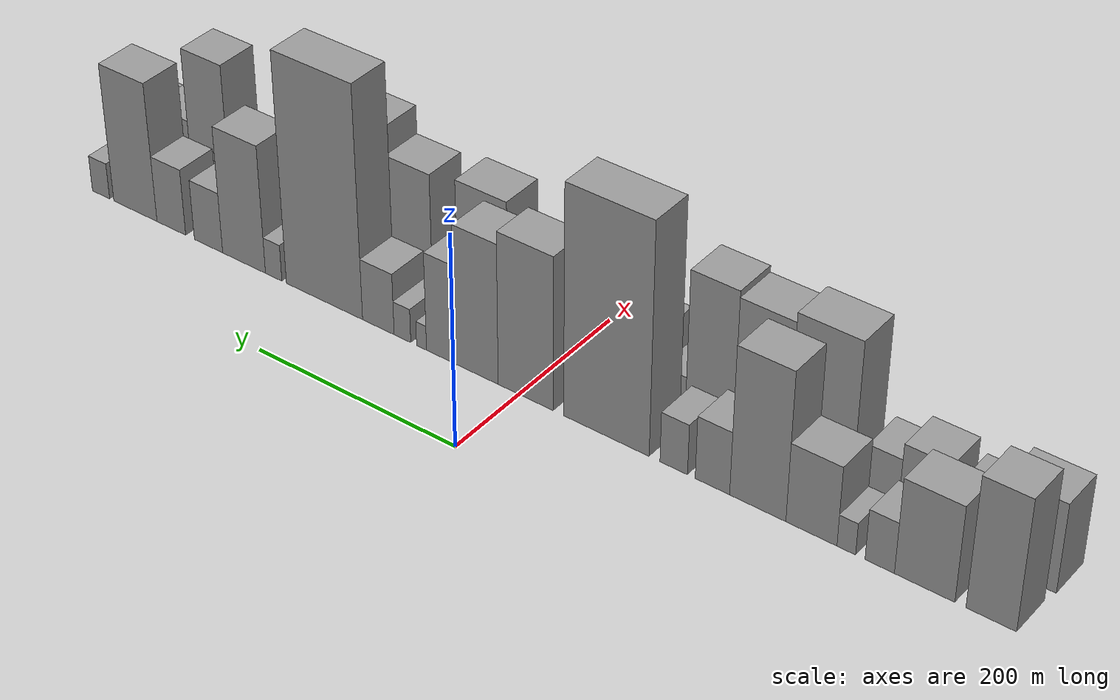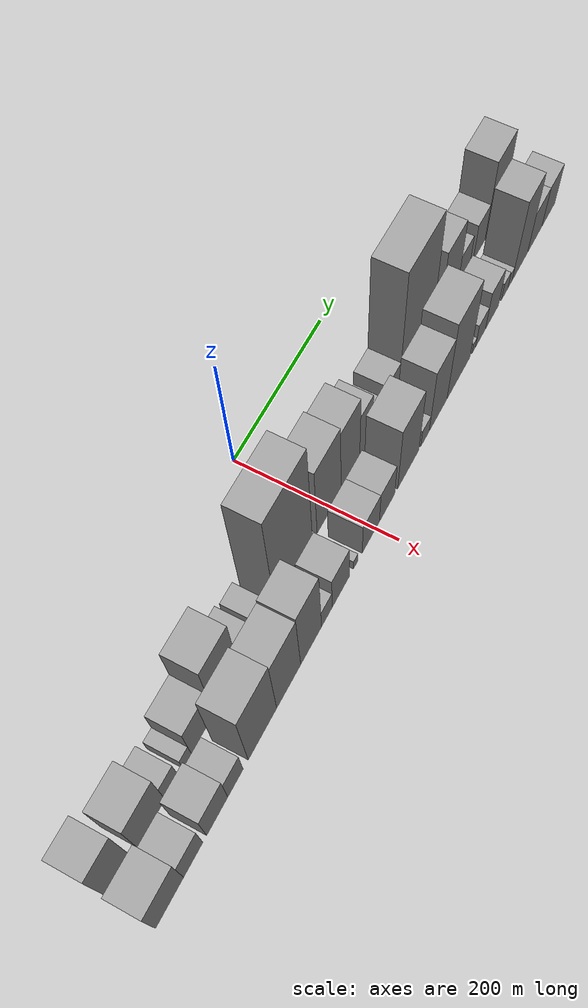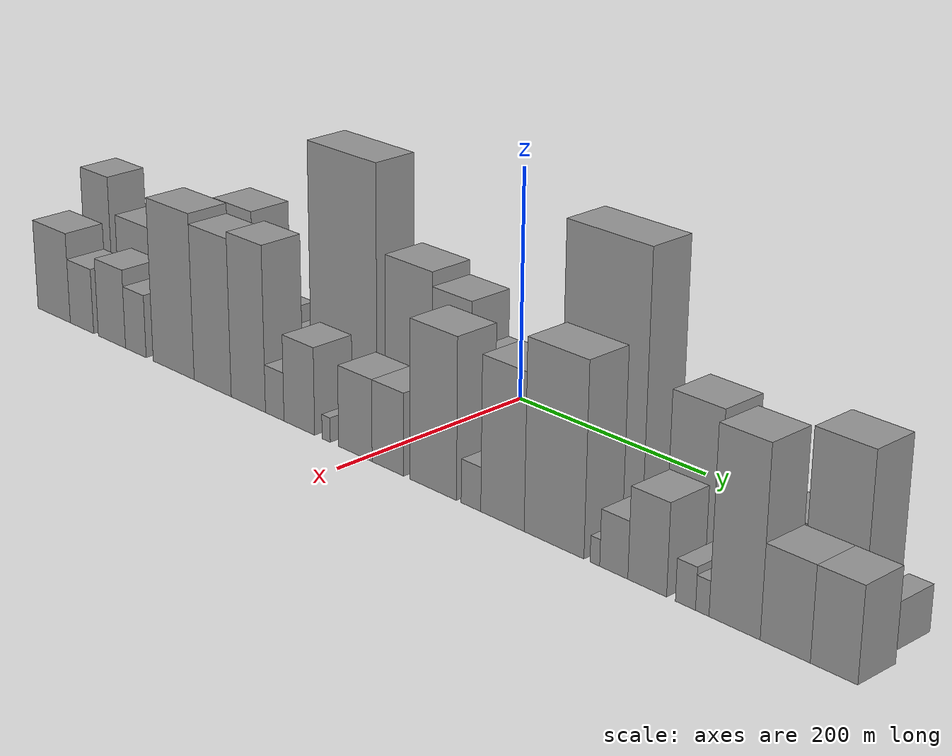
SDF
<sdf version="1.6">
 <world name="default">
  <scene>
   <sky><clouds><speed>12</speed></clouds></sky>
   <ambient>0.4 0.4 0.4 1</ambient>
   <background>0.7 0.7 0.7 1</background>
   <shadows>1</shadows>
  </scene>
  <gravity>0 0 -9.8066</gravity>
  <magnetic_field>6e-06 2.3e-05 -4.2e-05</magnetic_field>
  <physics default="0" name="default_physics" type="ode">
   <ode>
    <solver>
     <type>quick</type>
     <iters>10</iters>
     <sor>1.0</sor>
     <use_dynamic_moi_rescaling>0</use_dynamic_moi_rescaling>
    </solver>
    <constraints>
     <cfm>0</cfm>
     <erp>0.2</erp>
     <contact_max_correcting_vel>100</contact_max_correcting_vel>
     <contact_surface_layer>0.001</contact_surface_layer>
    </constraints>
   </ode>
   <max_step_size>0.004</max_step_size>
   <real_time_factor>1</real_time_factor>
   <real_time_update_rate>250</real_time_update_rate>
  </physics>
  <light name="sun" type="directional">
   <pose>0 0 10 0 0 0</pose>
   <diffuse>0.8 0.8 0.8 1</diffuse>
   <specular>0.2 0.2 0.2 1</specular>
   <attenuation>
    <range>1000</range>
    <constant>0.9</constant>
    <linear>0.01</linear>
    <quadratic>0.001</quadratic>
   </attenuation>
   <direction>-0.5 0.1 -0.9</direction>
  </light>
  <model name="building_1">
   <static>1</static>
   <pose>100.0000 -420.4994 0 0.000000 0.000000 0.000000</pose>
   <link name="link">
    <pose>0 0 61.50 0 0 0</pose>
    <collision name="collision"><geometry><box><size>40.0000 41.0012 123.0000</size></box></geometry></collision>
    <visual name="visual">
     <cast_shadows>0</cast_shadows>
     <geometry><box><size>40.0000 41.0012 123.0000</size></box></geometry>
     <material>
      <script>
       <uri>model://grey_wall/materials/scripts</uri>
       <uri>model://grey_wall/materials/textures</uri>
       <name>vrc/grey_wall</name>
      </script>
     </material>
    </visual>
   </link>
  </model>
  <model name="building_2">
   <static>1</static>
   <pose>100.0000 -365.9162 0 0.000000 0.000000 0.000000</pose>
   <link name="link">
    <pose>0 0 45.00 0 0 0</pose>
    <collision name="collision"><geometry><box><size>40.0000 50.1651 90.0000</size></box></geometry></collision>
    <visual name="visual">
     <cast_shadows>0</cast_shadows>
     <geometry><box><size>40.0000 50.1651 90.0000</size></box></geometry>
     <material>
      <script>
       <uri>model://grey_wall/materials/scripts</uri>
       <uri>model://grey_wall/materials/textures</uri>
       <name>vrc/grey_wall</name>
      </script>
     </material>
    </visual>
   </link>
  </model>
  <model name="building_3">
   <static>1</static>
   <pose>100.0000 -328.4179 0 0.000000 0.000000 0.000000</pose>
   <link name="link">
    <pose>0 0 24.00 0 0 0</pose>
    <collision name="collision"><geometry><box><size>40.0000 24.8317 48.0000</size></box></geometry></collision>
    <visual name="visual">
     <cast_shadows>0</cast_shadows>
     <geometry><box><size>40.0000 24.8317 48.0000</size></box></geometry>
     <material>
      <script>
       <uri>model://grey_wall/materials/scripts</uri>
       <uri>model://grey_wall/materials/textures</uri>
       <name>vrc/grey_wall</name>
      </script>
     </material>
    </visual>
   </link>
  </model>
  <model name="building_4">
   <static>1</static>
   <pose>100.0000 -300.0164 0 0.000000 0.000000 0.000000</pose>
   <link name="link">
    <pose>0 0 15.00 0 0 0</pose>
    <collision name="collision"><geometry><box><size>40.0000 15.9713 30.0000</size></box></geometry></collision>
    <visual name="visual">
     <cast_shadows>0</cast_shadows>
     <geometry><box><size>40.0000 15.9713 30.0000</size></box></geometry>
     <material>
      <script>
       <uri>model://grey_wall/materials/scripts</uri>
       <uri>model://grey_wall/materials/textures</uri>
       <name>vrc/grey_wall</name>
      </script>
     </material>
    </visual>
   </link>
  </model>
  <model name="building_5">
   <static>1</static>
   <pose>100.0000 -269.8307 0 0.000000 0.000000 0.000000</pose>
   <link name="link">
    <pose>0 0 37.50 0 0 0</pose>
    <collision name="collision"><geometry><box><size>40.0000 44.3999 75.0000</size></box></geometry></collision>
    <visual name="visual">
     <cast_shadows>0</cast_shadows>
     <geometry><box><size>40.0000 44.3999 75.0000</size></box></geometry>
     <material>
      <script>
       <uri>model://grey_wall/materials/scripts</uri>
       <uri>model://grey_wall/materials/textures</uri>
       <name>vrc/grey_wall</name>
      </script>
     </material>
    </visual>
   </link>
  </model>
  <model name="building_6">
   <static>1</static>
   <pose>100.0000 -222.6311 0 0.000000 0.000000 0.000000</pose>
   <link name="link">
    <pose>0 0 70.50 0 0 0</pose>
    <collision name="collision"><geometry><box><size>40.0000 49.9993 141.0000</size></box></geometry></collision>
    <visual name="visual">
     <cast_shadows>0</cast_shadows>
     <geometry><box><size>40.0000 49.9993 141.0000</size></box></geometry>
     <material>
      <script>
       <uri>model://grey_wall/materials/scripts</uri>
       <uri>model://grey_wall/materials/textures</uri>
       <name>vrc/grey_wall</name>
      </script>
     </material>
    </visual>
   </link>
  </model>
  <model name="building_7">
   <static>1</static>
   <pose>100.0000 -182.0371 0 0.000000 0.000000 0.000000</pose>
   <link name="link">
    <pose>0 0 30.00 0 0 0</pose>
    <collision name="collision"><geometry><box><size>40.0000 31.1887 60.0000</size></box></geometry></collision>
    <visual name="visual">
     <cast_shadows>0</cast_shadows>
     <geometry><box><size>40.0000 31.1887 60.0000</size></box></geometry>
     <material>
      <script>
       <uri>model://grey_wall/materials/scripts</uri>
       <uri>model://grey_wall/materials/textures</uri>
       <name>vrc/grey_wall</name>
      </script>
     </material>
    </visual>
   </link>
  </model>
  <model name="building_8">
   <static>1</static>
   <pose>100.0000 -146.7511 0 0.000000 0.000000 0.000000</pose>
   <link name="link">
    <pose>0 0 24.00 0 0 0</pose>
    <collision name="collision"><geometry><box><size>40.0000 25.3833 48.0000</size></box></geometry></collision>
    <visual name="visual">
     <cast_shadows>0</cast_shadows>
     <geometry><box><size>40.0000 25.3833 48.0000</size></box></geometry>
     <material>
      <script>
       <uri>model://grey_wall/materials/scripts</uri>
       <uri>model://grey_wall/materials/textures</uri>
       <name>vrc/grey_wall</name>
      </script>
     </material>
    </visual>
   </link>
  </model>
  <model name="building_9">
   <static>1</static>
   <pose>100.0000 -83.4653 0 0.000000 0.000000 0.000000</pose>
   <link name="link">
    <pose>0 0 109.50 0 0 0</pose>
    <collision name="collision"><geometry><box><size>40.0000 81.1882 219.0000</size></box></geometry></collision>
    <visual name="visual">
     <cast_shadows>0</cast_shadows>
     <geometry><box><size>40.0000 81.1882 219.0000</size></box></geometry>
     <material>
      <script>
       <uri>model://grey_wall/materials/scripts</uri>
       <uri>model://grey_wall/materials/textures</uri>
       <name>vrc/grey_wall</name>
      </script>
     </material>
    </visual>
   </link>
  </model>
  <model name="building_10">
   <static>1</static>
   <pose>100.0000 -5.8276 0 0.000000 0.000000 0.000000</pose>
   <link name="link">
    <pose>0 0 73.50 0 0 0</pose>
    <collision name="collision"><geometry><box><size>40.0000 54.0872 147.0000</size></box></geometry></collision>
    <visual name="visual">
     <cast_shadows>0</cast_shadows>
     <geometry><box><size>40.0000 54.0872 147.0000</size></box></geometry>
     <material>
      <script>
       <uri>model://grey_wall/materials/scripts</uri>
       <uri>model://grey_wall/materials/textures</uri>
       <name>vrc/grey_wall</name>
      </script>
     </material>
    </visual>
   </link>
  </model>
  <model name="building_11">
   <static>1</static>
   <pose>100.0000 42.9381 0 0.000000 0.000000 0.000000</pose>
   <link name="link">
    <pose>0 0 67.50 0 0 0</pose>
    <collision name="collision"><geometry><box><size>40.0000 43.4441 135.0000</size></box></geometry></collision>
    <visual name="visual">
     <cast_shadows>0</cast_shadows>
     <geometry><box><size>40.0000 43.4441 135.0000</size></box></geometry>
     <material>
      <script>
       <uri>model://grey_wall/materials/scripts</uri>
       <uri>model://grey_wall/materials/textures</uri>
       <name>vrc/grey_wall</name>
      </script>
     </material>
    </visual>
   </link>
  </model>
  <model name="building_12">
   <static>1</static>
   <pose>100.0000 79.1691 0 0.000000 0.000000 0.000000</pose>
   <link name="link">
    <pose>0 0 48.00 0 0 0</pose>
    <collision name="collision"><geometry><box><size>40.0000 29.0181 96.0000</size></box></geometry></collision>
    <visual name="visual">
     <cast_shadows>0</cast_shadows>
     <geometry><box><size>40.0000 29.0181 96.0000</size></box></geometry>
     <material>
      <script>
       <uri>model://grey_wall/materials/scripts</uri>
       <uri>model://grey_wall/materials/textures</uri>
       <name>vrc/grey_wall</name>
      </script>
     </material>
    </visual>
   </link>
  </model>
  <model name="building_13">
   <static>1</static>
   <pose>100.0000 98.7861 0 0.000000 0.000000 0.000000</pose>
   <link name="link">
    <pose>0 0 12.00 0 0 0</pose>
    <collision name="collision"><geometry><box><size>40.0000 10.2159 24.0000</size></box></geometry></collision>
    <visual name="visual">
     <cast_shadows>0</cast_shadows>
     <geometry><box><size>40.0000 10.2159 24.0000</size></box></geometry>
     <material>
      <script>
       <uri>model://grey_wall/materials/scripts</uri>
       <uri>model://grey_wall/materials/textures</uri>
       <name>vrc/grey_wall</name>
      </script>
     </material>
    </visual>
   </link>
  </model>
  <model name="building_14">
   <static>1</static>
   <pose>100.0000 118.5162 0 0.000000 0.000000 0.000000</pose>
   <link name="link">
    <pose>0 0 16.50 0 0 0</pose>
    <collision name="collision"><geometry><box><size>40.0000 17.2442 33.0000</size></box></geometry></collision>
    <visual name="visual">
     <cast_shadows>0</cast_shadows>
     <geometry><box><size>40.0000 17.2442 33.0000</size></box></geometry>
     <material>
      <script>
       <uri>model://grey_wall/materials/scripts</uri>
       <uri>model://grey_wall/materials/textures</uri>
       <name>vrc/grey_wall</name>
      </script>
     </material>
    </visual>
   </link>
  </model>
  <model name="building_15">
   <static>1</static>
   <pose>100.0000 143.7085 0 0.000000 0.000000 0.000000</pose>
   <link name="link">
    <pose>0 0 30.00 0 0 0</pose>
    <collision name="collision"><geometry><box><size>40.0000 33.1403 60.0000</size></box></geometry></collision>
    <visual name="visual">
     <cast_shadows>0</cast_shadows>
     <geometry><box><size>40.0000 33.1403 60.0000</size></box></geometry>
     <material>
      <script>
       <uri>model://grey_wall/materials/scripts</uri>
       <uri>model://grey_wall/materials/textures</uri>
       <name>vrc/grey_wall</name>
      </script>
     </material>
    </visual>
   </link>
  </model>
  <model name="building_16">
   <static>1</static>
   <pose>100.0000 201.2774 0 0.000000 0.000000 0.000000</pose>
   <link name="link">
    <pose>0 0 112.50 0 0 0</pose>
    <collision name="collision"><geometry><box><size>40.0000 81.9976 225.0000</size></box></geometry></collision>
    <visual name="visual">
     <cast_shadows>0</cast_shadows>
     <geometry><box><size>40.0000 81.9976 225.0000</size></box></geometry>
     <material>
      <script>
       <uri>model://grey_wall/materials/scripts</uri>
       <uri>model://grey_wall/materials/textures</uri>
       <name>vrc/grey_wall</name>
      </script>
     </material>
    </visual>
   </link>
  </model>
  <model name="building_17">
   <static>1</static>
   <pose>100.0000 256.3181 0 0.000000 0.000000 0.000000</pose>
   <link name="link">
    <pose>0 0 18.00 0 0 0</pose>
    <collision name="collision"><geometry><box><size>40.0000 18.0838 36.0000</size></box></geometry></collision>
    <visual name="visual">
     <cast_shadows>0</cast_shadows>
     <geometry><box><size>40.0000 18.0838 36.0000</size></box></geometry>
     <material>
      <script>
       <uri>model://grey_wall/materials/scripts</uri>
       <uri>model://grey_wall/materials/textures</uri>
       <name>vrc/grey_wall</name>
      </script>
     </material>
    </visual>
   </link>
  </model>
  <model name="building_18">
   <static>1</static>
   <pose>100.0000 289.2772 0 0.000000 0.000000 0.000000</pose>
   <link name="link">
    <pose>0 0 63.00 0 0 0</pose>
    <collision name="collision"><geometry><box><size>40.0000 47.8344 126.0000</size></box></geometry></collision>
    <visual name="visual">
     <cast_shadows>0</cast_shadows>
     <geometry><box><size>40.0000 47.8344 126.0000</size></box></geometry>
     <material>
      <script>
       <uri>model://grey_wall/materials/scripts</uri>
       <uri>model://grey_wall/materials/textures</uri>
       <name>vrc/grey_wall</name>
      </script>
     </material>
    </visual>
   </link>
  </model>
  <model name="building_19">
   <static>1</static>
   <pose>100.0000 329.2720 0 0.000000 0.000000 0.000000</pose>
   <link name="link">
    <pose>0 0 30.00 0 0 0</pose>
    <collision name="collision"><geometry><box><size>40.0000 32.1552 60.0000</size></box></geometry></collision>
    <visual name="visual">
     <cast_shadows>0</cast_shadows>
     <geometry><box><size>40.0000 32.1552 60.0000</size></box></geometry>
     <material>
      <script>
       <uri>model://grey_wall/materials/scripts</uri>
       <uri>model://grey_wall/materials/textures</uri>
       <name>vrc/grey_wall</name>
      </script>
     </material>
    </visual>
   </link>
  </model>
  <model name="building_20">
   <static>1</static>
   <pose>100.0000 371.9469 0 0.000000 0.000000 0.000000</pose>
   <link name="link">
    <pose>0 0 33.00 0 0 0</pose>
    <collision name="collision"><geometry><box><size>40.0000 33.1946 66.0000</size></box></geometry></collision>
    <visual name="visual">
     <cast_shadows>0</cast_shadows>
     <geometry><box><size>40.0000 33.1946 66.0000</size></box></geometry>
     <material>
      <script>
       <uri>model://grey_wall/materials/scripts</uri>
       <uri>model://grey_wall/materials/textures</uri>
       <name>vrc/grey_wall</name>
      </script>
     </material>
    </visual>
   </link>
  </model>
  <model name="building_21">
   <static>1</static>
   <pose>100.0000 413.9653 0 0.000000 0.000000 0.000000</pose>
   <link name="link">
    <pose>0 0 69.00 0 0 0</pose>
    <collision name="collision"><geometry><box><size>40.0000 50.8423 138.0000</size></box></geometry></collision>
    <visual name="visual">
     <cast_shadows>0</cast_shadows>
     <geometry><box><size>40.0000 50.8423 138.0000</size></box></geometry>
     <material>
      <script>
       <uri>model://grey_wall/materials/scripts</uri>
       <uri>model://grey_wall/materials/textures</uri>
       <name>vrc/grey_wall</name>
      </script>
     </material>
    </visual>
   </link>
  </model>
  <model name="building_22">
   <static>1</static>
   <pose>100.0000 454.6473 0 0.000000 0.000000 0.000000</pose>
   <link name="link">
    <pose>0 0 18.00 0 0 0</pose>
    <collision name="collision"><geometry><box><size>40.0000 20.5216 36.0000</size></box></geometry></collision>
    <visual name="visual">
     <cast_shadows>0</cast_shadows>
     <geometry><box><size>40.0000 20.5216 36.0000</size></box></geometry>
     <material>
      <script>
       <uri>model://grey_wall/materials/scripts</uri>
       <uri>model://grey_wall/materials/textures</uri>
       <name>vrc/grey_wall</name>
      </script>
     </material>
    </visual>
   </link>
  </model>
  <model name="building_23">
   <static>1</static>
   <pose>152.0000 -418.9598 0 0.000000 0.000000 0.000000</pose>
   <link name="link">
    <pose>0 0 42.00 0 0 0</pose>
    <collision name="collision"><geometry><box><size>40.0000 50.0803 84.0000</size></box></geometry></collision>
    <visual name="visual">
     <cast_shadows>0</cast_shadows>
     <geometry><box><size>40.0000 50.0803 84.0000</size></box></geometry>
     <material>
      <script>
       <uri>model://grey_wall/materials/scripts</uri>
       <uri>model://grey_wall/materials/textures</uri>
       <name>vrc/grey_wall</name>
      </script>
     </material>
    </visual>
   </link>
  </model>
  <model name="building_24">
   <static>1</static>
   <pose>152.0000 -376.2382 0 0.000000 0.000000 0.000000</pose>
   <link name="link">
    <pose>0 0 30.00 0 0 0</pose>
    <collision name="collision"><geometry><box><size>40.0000 35.3631 60.0000</size></box></geometry></collision>
    <visual name="visual">
     <cast_shadows>0</cast_shadows>
     <geometry><box><size>40.0000 35.3631 60.0000</size></box></geometry>
     <material>
      <script>
       <uri>model://grey_wall/materials/scripts</uri>
       <uri>model://grey_wall/materials/textures</uri>
       <name>vrc/grey_wall</name>
      </script>
     </material>
    </visual>
   </link>
  </model>
  <model name="building_25">
   <static>1</static>
   <pose>152.0000 -331.5322 0 0.000000 0.000000 0.000000</pose>
   <link name="link">
    <pose>0 0 36.00 0 0 0</pose>
    <collision name="collision"><geometry><box><size>40.0000 40.0489 72.0000</size></box></geometry></collision>
    <visual name="visual">
     <cast_shadows>0</cast_shadows>
     <geometry><box><size>40.0000 40.0489 72.0000</size></box></geometry>
     <material>
      <script>
       <uri>model://grey_wall/materials/scripts</uri>
       <uri>model://grey_wall/materials/textures</uri>
       <name>vrc/grey_wall</name>
      </script>
     </material>
    </visual>
   </link>
  </model>
  <model name="building_26">
   <static>1</static>
   <pose>152.0000 -296.7047 0 0.000000 0.000000 0.000000</pose>
   <link name="link">
    <pose>0 0 28.50 0 0 0</pose>
    <collision name="collision"><geometry><box><size>40.0000 29.6060 57.0000</size></box></geometry></collision>
    <visual name="visual">
     <cast_shadows>0</cast_shadows>
     <geometry><box><size>40.0000 29.6060 57.0000</size></box></geometry>
     <material>
      <script>
       <uri>model://grey_wall/materials/scripts</uri>
       <uri>model://grey_wall/materials/textures</uri>
       <name>vrc/grey_wall</name>
      </script>
     </material>
    </visual>
   </link>
  </model>
  <model name="building_27">
   <static>1</static>
   <pose>152.0000 -243.4515 0 0.000000 0.000000 0.000000</pose>
   <link name="link">
    <pose>0 0 73.50 0 0 0</pose>
    <collision name="collision"><geometry><box><size>40.0000 56.9002 147.0000</size></box></geometry></collision>
    <visual name="visual">
     <cast_shadows>0</cast_shadows>
     <geometry><box><size>40.0000 56.9002 147.0000</size></box></geometry>
     <material>
      <script>
       <uri>model://grey_wall/materials/scripts</uri>
       <uri>model://grey_wall/materials/textures</uri>
       <name>vrc/grey_wall</name>
      </script>
     </material>
    </visual>
   </link>
  </model>
  <model name="building_28">
   <static>1</static>
   <pose>152.0000 -190.1696 0 0.000000 0.000000 0.000000</pose>
   <link name="link">
    <pose>0 0 69.00 0 0 0</pose>
    <collision name="collision"><geometry><box><size>40.0000 49.6636 138.0000</size></box></geometry></collision>
    <visual name="visual">
     <cast_shadows>0</cast_shadows>
     <geometry><box><size>40.0000 49.6636 138.0000</size></box></geometry>
     <material>
      <script>
       <uri>model://grey_wall/materials/scripts</uri>
       <uri>model://grey_wall/materials/textures</uri>
       <name>vrc/grey_wall</name>
      </script>
     </material>
    </visual>
   </link>
  </model>
  <model name="building_29">
   <static>1</static>
   <pose>152.0000 -143.1743 0 0.000000 0.000000 0.000000</pose>
   <link name="link">
    <pose>0 0 72.00 0 0 0</pose>
    <collision name="collision"><geometry><box><size>40.0000 44.3269 144.0000</size></box></geometry></collision>
    <visual name="visual">
     <cast_shadows>0</cast_shadows>
     <geometry><box><size>40.0000 44.3269 144.0000</size></box></geometry>
     <material>
      <script>
       <uri>model://grey_wall/materials/scripts</uri>
       <uri>model://grey_wall/materials/textures</uri>
       <name>vrc/grey_wall</name>
      </script>
     </material>
    </visual>
   </link>
  </model>
  <model name="building_30">
   <static>1</static>
   <pose>152.0000 -109.3062 0 0.000000 0.000000 0.000000</pose>
   <link name="link">
    <pose>0 0 21.00 0 0 0</pose>
    <collision name="collision"><geometry><box><size>40.0000 23.4093 42.0000</size></box></geometry></collision>
    <visual name="visual">
     <cast_shadows>0</cast_shadows>
     <geometry><box><size>40.0000 23.4093 42.0000</size></box></geometry>
     <material>
      <script>
       <uri>model://grey_wall/materials/scripts</uri>
       <uri>model://grey_wall/materials/textures</uri>
       <name>vrc/grey_wall</name>
      </script>
     </material>
    </visual>
   </link>
  </model>
  <model name="building_31">
   <static>1</static>
   <pose>152.0000 -78.6214 0 0.000000 0.000000 0.000000</pose>
   <link name="link">
    <pose>0 0 37.50 0 0 0</pose>
    <collision name="collision"><geometry><box><size>40.0000 37.9603 75.0000</size></box></geometry></collision>
    <visual name="visual">
     <cast_shadows>0</cast_shadows>
     <geometry><box><size>40.0000 37.9603 75.0000</size></box></geometry>
     <material>
      <script>
       <uri>model://grey_wall/materials/scripts</uri>
       <uri>model://grey_wall/materials/textures</uri>
       <name>vrc/grey_wall</name>
      </script>
     </material>
    </visual>
   </link>
  </model>
  <model name="building_32">
   <static>1</static>
   <pose>152.0000 -45.6721 0 0.000000 0.000000 0.000000</pose>
   <link name="link">
    <pose>0 0 10.50 0 0 0</pose>
    <collision name="collision"><geometry><box><size>40.0000 9.9383 21.0000</size></box></geometry></collision>
    <visual name="visual">
     <cast_shadows>0</cast_shadows>
     <geometry><box><size>40.0000 9.9383 21.0000</size></box></geometry>
     <material>
      <script>
       <uri>model://grey_wall/materials/scripts</uri>
       <uri>model://grey_wall/materials/textures</uri>
       <name>vrc/grey_wall</name>
      </script>
     </material>
    </visual>
   </link>
  </model>
  <model name="building_33">
   <static>1</static>
   <pose>152.0000 -10.9851 0 0.000000 0.000000 0.000000</pose>
   <link name="link">
    <pose>0 0 34.50 0 0 0</pose>
    <collision name="collision"><geometry><box><size>40.0000 39.4358 69.0000</size></box></geometry></collision>
    <visual name="visual">
     <cast_shadows>0</cast_shadows>
     <geometry><box><size>40.0000 39.4358 69.0000</size></box></geometry>
     <material>
      <script>
       <uri>model://grey_wall/materials/scripts</uri>
       <uri>model://grey_wall/materials/textures</uri>
       <name>vrc/grey_wall</name>
      </script>
     </material>
    </visual>
   </link>
  </model>
  <model name="building_34">
   <static>1</static>
   <pose>152.0000 26.8753 0 0.000000 0.000000 0.000000</pose>
   <link name="link">
    <pose>0 0 34.50 0 0 0</pose>
    <collision name="collision"><geometry><box><size>40.0000 36.2849 69.0000</size></box></geometry></collision>
    <visual name="visual">
     <cast_shadows>0</cast_shadows>
     <geometry><box><size>40.0000 36.2849 69.0000</size></box></geometry>
     <material>
      <script>
       <uri>model://grey_wall/materials/scripts</uri>
       <uri>model://grey_wall/materials/textures</uri>
       <name>vrc/grey_wall</name>
      </script>
     </material>
    </visual>
   </link>
  </model>
  <model name="building_35">
   <static>1</static>
   <pose>152.0000 77.6293 0 0.000000 0.000000 0.000000</pose>
   <link name="link">
    <pose>0 0 66.00 0 0 0</pose>
    <collision name="collision"><geometry><box><size>40.0000 51.2232 132.0000</size></box></geometry></collision>
    <visual name="visual">
     <cast_shadows>0</cast_shadows>
     <geometry><box><size>40.0000 51.2232 132.0000</size></box></geometry>
     <material>
      <script>
       <uri>model://grey_wall/materials/scripts</uri>
       <uri>model://grey_wall/materials/textures</uri>
       <name>vrc/grey_wall</name>
      </script>
     </material>
    </visual>
   </link>
  </model>
  <model name="building_36">
   <static>1</static>
   <pose>152.0000 118.7397 0 0.000000 0.000000 0.000000</pose>
   <link name="link">
    <pose>0 0 18.00 0 0 0</pose>
    <collision name="collision"><geometry><box><size>40.0000 20.9976 36.0000</size></box></geometry></collision>
    <visual name="visual">
     <cast_shadows>0</cast_shadows>
     <geometry><box><size>40.0000 20.9976 36.0000</size></box></geometry>
     <material>
      <script>
       <uri>model://grey_wall/materials/scripts</uri>
       <uri>model://grey_wall/materials/textures</uri>
       <name>vrc/grey_wall</name>
      </script>
     </material>
    </visual>
   </link>
  </model>
  <model name="building_37">
   <static>1</static>
   <pose>152.0000 151.8270 0 0.000000 0.000000 0.000000</pose>
   <link name="link">
    <pose>0 0 63.00 0 0 0</pose>
    <collision name="collision"><geometry><box><size>40.0000 45.1769 126.0000</size></box></geometry></collision>
    <visual name="visual">
     <cast_shadows>0</cast_shadows>
     <geometry><box><size>40.0000 45.1769 126.0000</size></box></geometry>
     <material>
      <script>
       <uri>model://grey_wall/materials/scripts</uri>
       <uri>model://grey_wall/materials/textures</uri>
       <name>vrc/grey_wall</name>
      </script>
     </material>
    </visual>
   </link>
  </model>
  <model name="building_38">
   <static>1</static>
   <pose>152.0000 204.2733 0 0.000000 0.000000 0.000000</pose>
   <link name="link">
    <pose>0 0 76.50 0 0 0</pose>
    <collision name="collision"><geometry><box><size>40.0000 59.7157 153.0000</size></box></geometry></collision>
    <visual name="visual">
     <cast_shadows>0</cast_shadows>
     <geometry><box><size>40.0000 59.7157 153.0000</size></box></geometry>
     <material>
      <script>
       <uri>model://grey_wall/materials/scripts</uri>
       <uri>model://grey_wall/materials/textures</uri>
       <name>vrc/grey_wall</name>
      </script>
     </material>
    </visual>
   </link>
  </model>
  <model name="building_39">
   <static>1</static>
   <pose>152.0000 244.7584 0 0.000000 0.000000 0.000000</pose>
   <link name="link">
    <pose>0 0 10.50 0 0 0</pose>
    <collision name="collision"><geometry><box><size>40.0000 9.2546 21.0000</size></box></geometry></collision>
    <visual name="visual">
     <cast_shadows>0</cast_shadows>
     <geometry><box><size>40.0000 9.2546 21.0000</size></box></geometry>
     <material>
      <script>
       <uri>model://grey_wall/materials/scripts</uri>
       <uri>model://grey_wall/materials/textures</uri>
       <name>vrc/grey_wall</name>
      </script>
     </material>
    </visual>
   </link>
  </model>
  <model name="building_40">
   <static>1</static>
   <pose>152.0000 262.8063 0 0.000000 0.000000 0.000000</pose>
   <link name="link">
    <pose>0 0 22.50 0 0 0</pose>
    <collision name="collision"><geometry><box><size>40.0000 26.8412 45.0000</size></box></geometry></collision>
    <visual name="visual">
     <cast_shadows>0</cast_shadows>
     <geometry><box><size>40.0000 26.8412 45.0000</size></box></geometry>
     <material>
      <script>
       <uri>model://grey_wall/materials/scripts</uri>
       <uri>model://grey_wall/materials/textures</uri>
       <name>vrc/grey_wall</name>
      </script>
     </material>
    </visual>
   </link>
  </model>
  <model name="building_41">
   <static>1</static>
   <pose>152.0000 294.2332 0 0.000000 0.000000 0.000000</pose>
   <link name="link">
    <pose>0 0 36.00 0 0 0</pose>
    <collision name="collision"><geometry><box><size>40.0000 36.0126 72.0000</size></box></geometry></collision>
    <visual name="visual">
     <cast_shadows>0</cast_shadows>
     <geometry><box><size>40.0000 36.0126 72.0000</size></box></geometry>
     <material>
      <script>
       <uri>model://grey_wall/materials/scripts</uri>
       <uri>model://grey_wall/materials/textures</uri>
       <name>vrc/grey_wall</name>
      </script>
     </material>
    </visual>
   </link>
  </model>
  <model name="building_42">
   <static>1</static>
   <pose>152.0000 329.3106 0 0.000000 0.000000 0.000000</pose>
   <link name="link">
    <pose>0 0 16.50 0 0 0</pose>
    <collision name="collision"><geometry><box><size>40.0000 18.1423 33.0000</size></box></geometry></collision>
    <visual name="visual">
     <cast_shadows>0</cast_shadows>
     <geometry><box><size>40.0000 18.1423 33.0000</size></box></geometry>
     <material>
      <script>
       <uri>model://grey_wall/materials/scripts</uri>
       <uri>model://grey_wall/materials/textures</uri>
       <name>vrc/grey_wall</name>
      </script>
     </material>
    </visual>
   </link>
  </model>
  <model name="building_43">
   <static>1</static>
   <pose>152.0000 344.3892 0 0.000000 0.000000 0.000000</pose>
   <link name="link">
    <pose>0 0 13.50 0 0 0</pose>
    <collision name="collision"><geometry><box><size>40.0000 12.0149 27.0000</size></box></geometry></collision>
    <visual name="visual">
     <cast_shadows>0</cast_shadows>
     <geometry><box><size>40.0000 12.0149 27.0000</size></box></geometry>
     <material>
      <script>
       <uri>model://grey_wall/materials/scripts</uri>
       <uri>model://grey_wall/materials/textures</uri>
       <name>vrc/grey_wall</name>
      </script>
     </material>
    </visual>
   </link>
  </model>
  <model name="building_44">
   <static>1</static>
   <pose>152.0000 372.6323 0 0.000000 0.000000 0.000000</pose>
   <link name="link">
    <pose>0 0 72.00 0 0 0</pose>
    <collision name="collision"><geometry><box><size>40.0000 44.4713 144.0000</size></box></geometry></collision>
    <visual name="visual">
     <cast_shadows>0</cast_shadows>
     <geometry><box><size>40.0000 44.4713 144.0000</size></box></geometry>
     <material>
      <script>
       <uri>model://grey_wall/materials/scripts</uri>
       <uri>model://grey_wall/materials/textures</uri>
       <name>vrc/grey_wall</name>
      </script>
     </material>
    </visual>
   </link>
  </model>
  <model name="building_45">
   <static>1</static>
   <pose>152.0000 415.8601 0 0.000000 0.000000 0.000000</pose>
   <link name="link">
    <pose>0 0 36.00 0 0 0</pose>
    <collision name="collision"><geometry><box><size>40.0000 41.9843 72.0000</size></box></geometry></collision>
    <visual name="visual">
     <cast_shadows>0</cast_shadows>
     <geometry><box><size>40.0000 41.9843 72.0000</size></box></geometry>
     <material>
      <script>
       <uri>model://grey_wall/materials/scripts</uri>
       <uri>model://grey_wall/materials/textures</uri>
       <name>vrc/grey_wall</name>
      </script>
     </material>
    </visual>
   </link>
  </model>
  <model name="building_46">
   <static>1</static>
   <pose>152.0000 456.0974 0 0.000000 0.000000 0.000000</pose>
   <link name="link">
    <pose>0 0 36.00 0 0 0</pose>
    <collision name="collision"><geometry><box><size>40.0000 38.4902 72.0000</size></box></geometry></collision>
    <visual name="visual">
     <cast_shadows>0</cast_shadows>
     <geometry><box><size>40.0000 38.4902 72.0000</size></box></geometry>
     <material>
      <script>
       <uri>model://grey_wall/materials/scripts</uri>
       <uri>model://grey_wall/materials/textures</uri>
       <name>vrc/grey_wall</name>
      </script>
     </material>
    </visual>
   </link>
  </model>
 </world>
</sdf>
